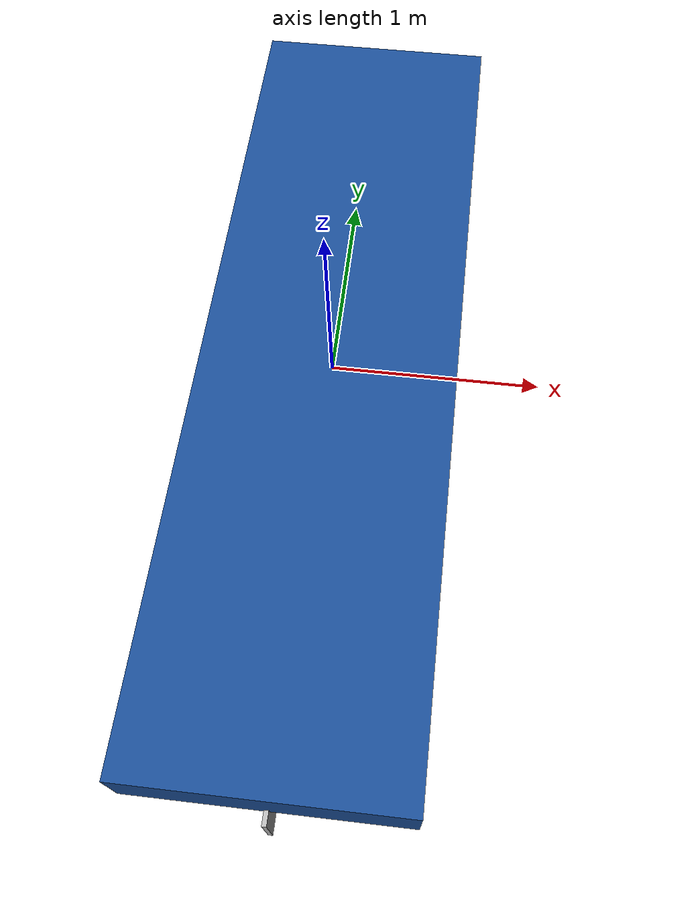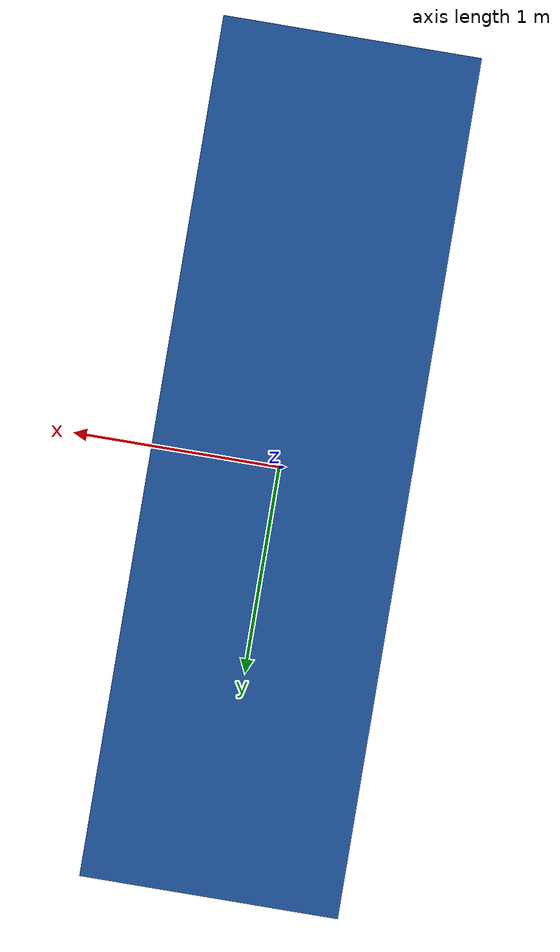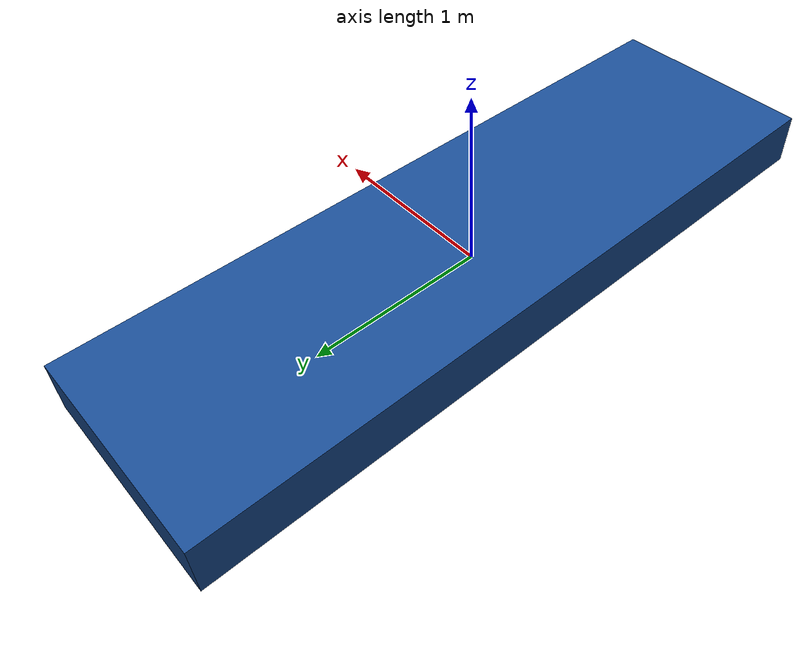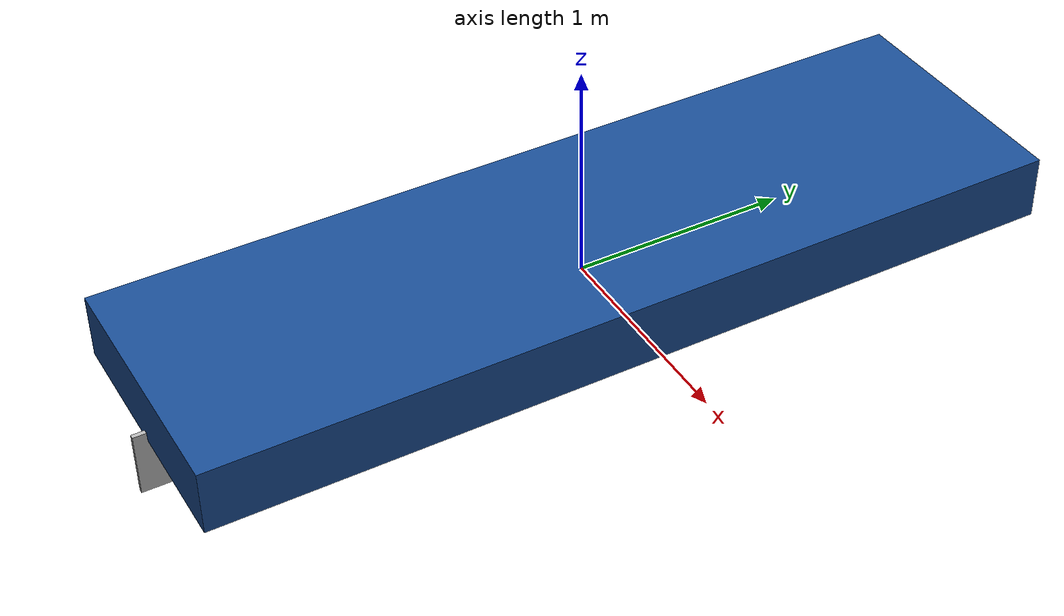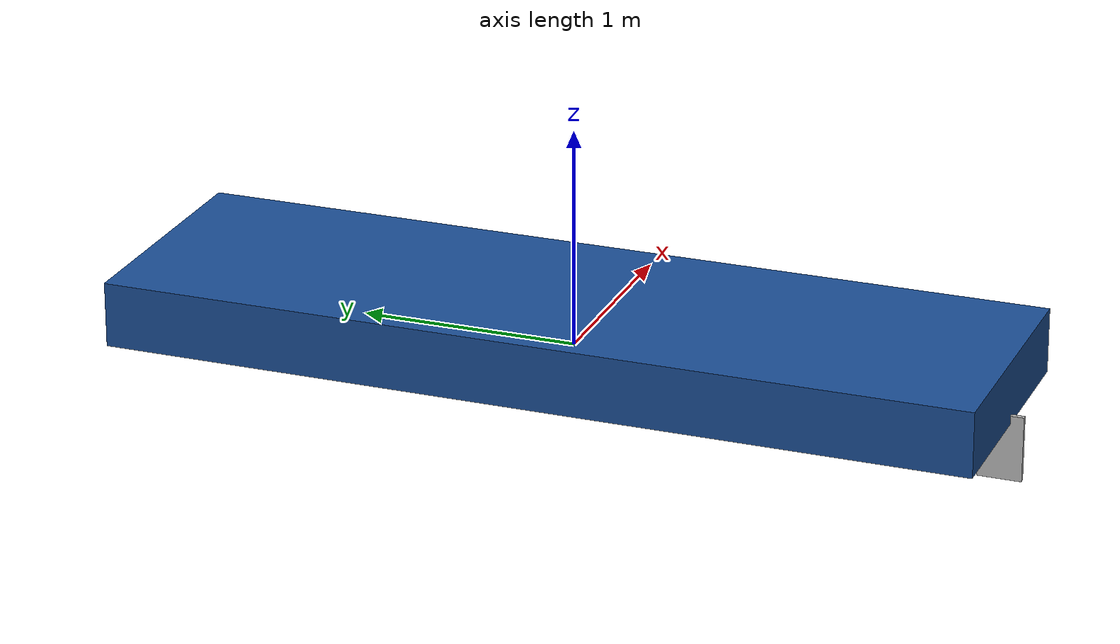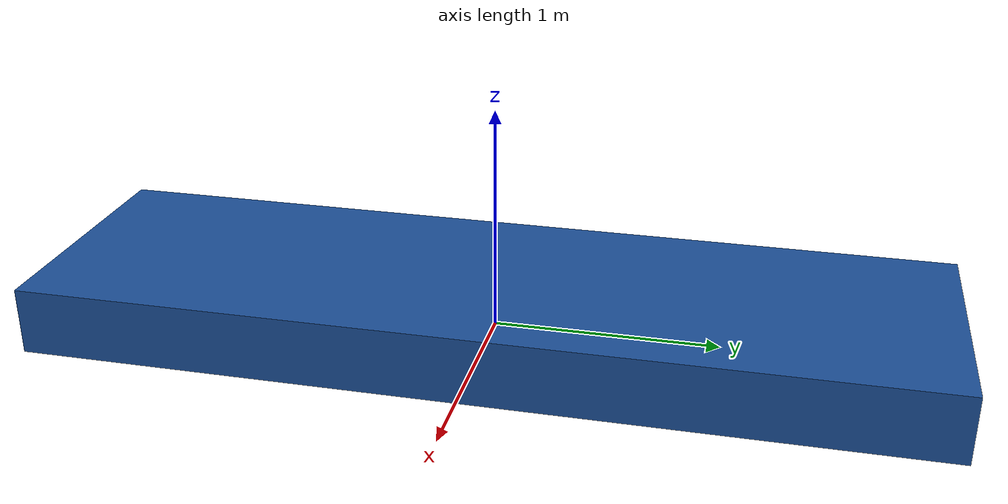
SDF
<?xml version="1.0"?>
<sdf version="1.9"><world name="vehicle_b_check"><physics name="1ms" type="dart"><max_step_size>0.01</max_step_size><real_time_factor>1</real_time_factor></physics><gravity>0 0 -9.80665</gravity><plugin filename="gz-sim-physics-system" name="gz::sim::systems::Physics"/><plugin filename="gz-sim-user-commands-system" name="gz::sim::systems::UserCommands"/><plugin filename="gz-sim-buoyancy-system" name="gz::sim::systems::Buoyancy"><uniform_fluid_density>1000</uniform_fluid_density></plugin><include><uri>model://vehicle-b-rudder</uri><pose>0 0 0 0 0 1.5707963267948966</pose></include></world></sdf>

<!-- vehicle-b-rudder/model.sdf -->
<sdf version="1.9">
  <model name="vehicle-b-rudder">
    <pose>0 0 0.02 0 0 0</pose>
    <link name="base_link">
      <inertial><mass>739.1</mass><inertia><ixx>94.23525</ixx><iyy>991.0099166666668</iyy><izz>1074.1586666666667</izz><ixy>0</ixy><ixz>0</ixz><iyz>0</iyz></inertia><fluid_added_mass><xx>53.45188104433584</xx><yy>456.3418916895755</yy><zz>2403.933173311076</zz><pp>37.05301877157964</pp><qq>1032.6807912708389</qq><rr>435.34948236272845</rr></fluid_added_mass></inertial>
      <collision name="buoyant_hull"><pose>-0.00305 0 0.077111633 0 0 0</pose><geometry><box><size>4 1.2 0.154223267</size></box></geometry></collision>
      <visual name="hull_visual"><pose>0 0 0.08 0 0 0</pose><geometry><box><size>4 1.2 0.3</size></box></geometry><material><diffuse>0.10 0.30 0.58 1</diffuse></material></visual>
    </link>
    <link name="propeller_link"><pose>-1.85 0 -0.20 0 0 0</pose><inertial><mass>1</mass><inertia><ixx>0.002</ixx><iyy>0.002</iyy><izz>0.002</izz></inertia></inertial><collision name="collision"><geometry><cylinder><radius>0.1</radius><length>0.02</length></cylinder></geometry></collision></link>
    <joint name="propeller_joint" type="revolute"><parent>base_link</parent><child>propeller_link</child><axis><xyz>1 0 0</xyz></axis></joint>
    <link name="rudder_link"><pose>-1.96 0 -0.18 0 0 0</pose><inertial><mass>2</mass><inertia><ixx>0.0167</ixx><iyy>0.0217</iyy><izz>0.005</izz></inertia></inertial><collision name="collision"><geometry><box><size>0.20 0.02 0.30</size></box></geometry></collision><visual name="visual"><geometry><box><size>0.20 0.02 0.30</size></box></geometry></visual></link>
    <joint name="rudder_joint" type="revolute"><parent>base_link</parent><child>rudder_link</child><axis><xyz>0 0 1</xyz><limit><lower>-0.61</lower><upper>0.61</upper><effort>1000</effort><velocity>0.261799</velocity></limit><dynamics><damping>2</damping></dynamics></axis></joint>
    <plugin filename="gz-sim-thruster-system" name="gz::sim::systems::Thruster"><namespace>vehicle-b-rudder</namespace><joint_name>propeller_joint</joint_name><use_angvel_cmd>false</use_angvel_cmd><thrust_coefficient>0.004422</thrust_coefficient><fluid_density>1000</fluid_density><propeller_diameter>0.2</propeller_diameter><velocity_control>true</velocity_control><min_thrust_cmd>-1000</min_thrust_cmd><max_thrust_cmd>1000</max_thrust_cmd><wake_fraction>0.2</wake_fraction></plugin>
    <plugin filename="gz-sim-joint-position-controller-system" name="gz::sim::systems::JointPositionController"><joint_name>rudder_joint</joint_name><p_gain>50</p_gain><i_gain>0</i_gain><d_gain>5</d_gain><i_max>0</i_max><i_min>0</i_min><cmd_max>1000</cmd_max><cmd_min>-1000</cmd_min><topic>/model/vehicle-b-rudder/joint/rudder_joint/0/cmd_pos</topic></plugin>
    <plugin filename="gz-sim-lift-drag-system" name="gz::sim::systems::LiftDrag"><air_density>1000</air_density><cla>4.13</cla><cla_stall>-1.1</cla_stall><cda>0.2</cda><cda_stall>0.03</cda_stall><alpha_stall>0.17</alpha_stall><a0>0</a0><area>0.06</area><upward>0 1 0</upward><forward>1 0 0</forward><link_name>rudder_link</link_name><cp>0 0 0</cp></plugin>
    <plugin filename="gz-sim-hydrodynamics-system" name="gz::sim::systems::Hydrodynamics"><link_name>base_link</link_name><xU>-82.28807338062298</xU><yV>-215.55099351107035</yV><zW>-1633.381479045514</zW><kP>-1.455665796014495</kP><mQ>-444.51732840631476</mQ><nR>-520.0630379120489</nR><xUabsU>-45</xUabsU><yVabsV>-300</yVabsV><zWabsW>-380</zWabsW><kPabsP>-0.0013929381840742732</kPabsP><mQabsQ>-500</mQabsQ><nRabsR>-650</nRabsR></plugin>
    <plugin filename="gz-sim-pose-publisher-system" name="gz::sim::systems::PosePublisher"><publish_model_pose>true</publish_model_pose><publish_link_pose>false</publish_link_pose><use_pose_vector_msg>true</use_pose_vector_msg><static_publisher>false</static_publisher><update_frequency>20</update_frequency></plugin>
    <plugin filename="gz-sim-odometry-publisher-system" name="gz::sim::systems::OdometryPublisher"><odom_publish_frequency>20</odom_publish_frequency><odom_topic>/model/vehicle-b-rudder/odometry</odom_topic><dimensions>3</dimensions></plugin>
  </model>
</sdf>
